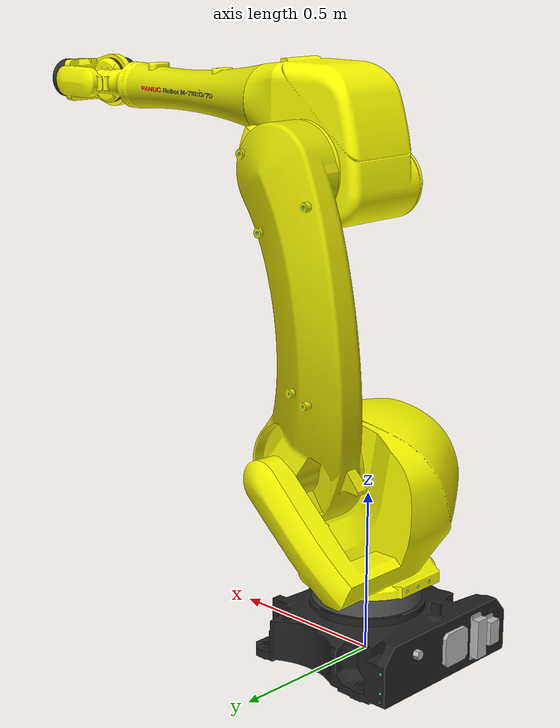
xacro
<?xml version="1.0" ?>
<robot name="m710id_70" xmlns:xacro="http://wiki.ros.org/xacro">
  <xacro:include
    filename="$(find fanuc_m710_description)/urdf/m710id_70_urdf_macro.xacro"
  />

  <link name="world" />
  <link name="ee_link" />
  <xacro:m710id_70 parent="world" child="ee_link">
    <origin xyz="0 0 0" rpy="0 0 0" />
  </xacro:m710id_70>
</robot>

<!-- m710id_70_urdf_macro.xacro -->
<!--
SPDX-FileCopyrightText: 2026, FANUC America Corporation
SPDX-FileCopyrightText: 2026, FANUC CORPORATION
SPDX-License-Identifier: Apache-2.0
-->
<!-- URDF for M-710/70-21D (M-710iD/70) -->
<robot xmlns:xacro="http://wiki.ros.org/xacro">
  <xacro:macro
    name="m710id_70"
    params="prefix=''
            parent
            *origin
            child"
  >

    <xacro:property name="j1_lower_limit" value="${radians(-185)}" />
    <xacro:property name="j2_lower_limit" value="${radians(-75)}" />
    <xacro:property name="j3_lower_limit" value="${radians(-80.5)}" />
    <xacro:property name="j4_lower_limit" value="${radians(-400)}" />
    <xacro:property name="j5_lower_limit" value="${radians(-125)}" />
    <xacro:property name="j6_lower_limit" value="${radians(-400)}" />

    <xacro:property name="j1_upper_limit" value="${radians(185)}" />
    <xacro:property name="j2_upper_limit" value="${radians(150)}" />
    <xacro:property name="j3_upper_limit" value="${radians(205)}" />
    <xacro:property name="j4_upper_limit" value="${radians(400)}" />
    <xacro:property name="j5_upper_limit" value="${radians(125)}" />
    <xacro:property name="j6_upper_limit" value="${radians(400)}" />

    <xacro:property name="j1_effort_limit" value="8000" />
    <xacro:property name="j2_effort_limit" value="10000" />
    <xacro:property name="j3_effort_limit" value="5000" />
    <xacro:property name="j4_effort_limit" value="2000" />
    <xacro:property name="j5_effort_limit" value="1000" />
    <xacro:property name="j6_effort_limit" value="900" />

    <xacro:property name="j1_velocity_limit" value="${radians(180)}" />
    <xacro:property name="j2_velocity_limit" value="${radians(180)}" />
    <xacro:property name="j3_velocity_limit" value="${radians(180)}" />
    <xacro:property name="j4_velocity_limit" value="${radians(260)}" />
    <xacro:property name="j5_velocity_limit" value="${radians(260)}" />
    <xacro:property name="j6_velocity_limit" value="${radians(370)}" />

    <!-- links -->
    <link name="${prefix}base_link">
      <visual>
        <origin xyz="0 0 0" rpy="0 0 0" />
        <geometry>
          <mesh
            filename="package://fanuc_m710_description/meshes/m710id_70/visual/base.dae"
          />
        </geometry>
      </visual>
      <collision>
        <origin xyz="0 0 0" rpy="0 0 0" />
        <geometry>
          <mesh
            filename="package://fanuc_m710_description/meshes/m710id_70/collision/base.stl"
          />
        </geometry>
      </collision>
      <inertial>
        <mass value=" 115" />
        <origin xyz="-.0562 -.000509  .109" />
        <inertia
          ixx=" 2.95"
          ixy="-.0346"
          ixz=" .0263"
          iyy=" 3.15"
          iyz=" .00171"
          izz=" 5.12"
        />
      </inertial>
    </link>

    <link name="${prefix}J1_link">
      <visual>
        <origin xyz="0 0 0" rpy="0 0 0" />
        <geometry>
          <mesh
            filename="package://fanuc_m710_description/meshes/m710id_70/visual/j1.dae"
          />
        </geometry>
      </visual>
      <collision>
        <origin xyz="0 0 0" rpy="0 0 0" />
        <geometry>
          <mesh
            filename="package://fanuc_m710_description/meshes/m710id_70/collision/j1.stl"
          />
        </geometry>
      </collision>
      <inertial>
        <mass value=" 189" />
        <origin xyz=" .0361 -.00394 -.0874" />
        <inertia
          ixx=" 7.22"
          ixy=" .238"
          ixz="-.646"
          iyy=" 5.83"
          iyz=" .444"
          izz=" 7.43"
        />
      </inertial>
    </link>

    <link name="${prefix}J2_link">
      <visual>
        <origin xyz="0 0 0" rpy="0 0 0" />
        <geometry>
          <mesh
            filename="package://fanuc_m710_description/meshes/m710id_70/visual/j2.dae"
          />
        </geometry>
      </visual>
      <collision>
        <origin xyz="0 0 0" rpy="0 0 0" />
        <geometry>
          <mesh
            filename="package://fanuc_m710_description/meshes/m710id_70/collision/j2.stl"
          />
        </geometry>
      </collision>
      <inertial>
        <mass value=" 137" />
        <origin xyz="-.0291  .17  .4" />
        <inertia
          ixx=" 13.3"
          ixy=" .0925"
          ixz="-.0231"
          iyy=" 14.2"
          iyz="-1.14"
          izz=" 1.9"
        />
      </inertial>
    </link>

    <link name="${prefix}J3_link">
      <visual>
        <origin xyz="0 0 0" rpy="0 0 0" />
        <geometry>
          <mesh
            filename="package://fanuc_m710_description/meshes/m710id_70/visual/j3.dae"
          />
        </geometry>
      </visual>
      <collision>
        <origin xyz="0 0 0" rpy="0 0 0" />
        <geometry>
          <mesh
            filename="package://fanuc_m710_description/meshes/m710id_70/collision/j3.stl"
          />
        </geometry>
      </collision>
      <inertial>
        <mass value=" 93.9" />
        <origin xyz=" .0255 -.005  .0679" />
        <inertia
          ixx=" 2"
          ixy="-.0815"
          ixz="-.327"
          iyy=" 2.53"
          iyz="-.0631"
          izz=" 2.02"
        />
      </inertial>
    </link>

    <link name="${prefix}J4_link">
      <visual>
        <origin xyz="0 0 0" rpy="0 0 0" />
        <geometry>
          <mesh
            filename="package://fanuc_m710_description/meshes/m710id_70/visual/j4.dae"
          />
        </geometry>
      </visual>
      <collision>
        <origin xyz="0 0 0" rpy="0 0 0" />
        <geometry>
          <mesh
            filename="package://fanuc_m710_description/meshes/m710id_70/collision/j4.stl"
          />
        </geometry>
      </collision>
      <inertial>
        <mass value=" 34.8" />
        <origin xyz=" .612 -.00489  .000279" />
        <inertia
          ixx=" .14"
          ixy=" .012"
          ixz="-.000192"
          iyy=" 1.83"
          iyz="-.000335"
          izz=" 1.83"
        />
      </inertial>
    </link>

    <link name="${prefix}J5_link">
      <visual>
        <origin xyz="0 0 0" rpy="0 0 0" />
        <geometry>
          <mesh
            filename="package://fanuc_m710_description/meshes/m710id_70/visual/j5.dae"
          />
        </geometry>
      </visual>
      <collision>
        <origin xyz="0 0 0" rpy="0 0 0" />
        <geometry>
          <mesh
            filename="package://fanuc_m710_description/meshes/m710id_70/collision/j5.stl"
          />
        </geometry>
      </collision>
      <inertial>
        <mass value=" 10.2" />
        <origin xyz=" .0344 -.0134  .0000000923" />
        <inertia
          ixx=" .0448"
          ixy="-.00501"
          ixz="-.000000106"
          iyy=" .0525"
          iyz="-.00000028"
          izz=" .0678"
        />
      </inertial>
    </link>

    <link name="${prefix}J6_link">
      <visual>
        <origin xyz="0 0 0" rpy="0 0 0" />
        <geometry>
          <mesh
            filename="package://fanuc_m710_description/meshes/m710id_70/visual/j6.dae"
          />
        </geometry>
      </visual>
      <collision>
        <origin xyz="0 0 0" rpy="0 0 0" />
        <geometry>
          <mesh
            filename="package://fanuc_m710_description/meshes/m710id_70/collision/j6.stl"
          />
        </geometry>
      </collision>
      <inertial>
        <mass value=" .447" />
        <origin xyz=" .165 -7.3E-19  3.24E-19" />
        <inertia
          ixx=" .000872"
          ixy="-1.22E-19"
          ixz="-4.86E-20"
          iyy=" .000451"
          iyz="-1.66E-21"
          izz=" .000451"
        />
      </inertial>
    </link>

    <!-- joints -->
    <joint name="${prefix}J1" type="revolute">
      <origin xyz=" 0  0  .565" rpy="0 0 0" />
      <parent link="${prefix}base_link" />
      <child link="${prefix}J1_link" />
      <axis xyz=" 0  0  1" />
      <limit
        lower="${j1_lower_limit}"
        upper="${j1_upper_limit}"
        effort="${j1_effort_limit}"
        velocity="${j1_velocity_limit}"
      />
    </joint>

    <joint name="${prefix}J2" type="revolute">
      <origin xyz=" .15  0  0" rpy="0 0 0" />
      <parent link="${prefix}J1_link" />
      <child link="${prefix}J2_link" />
      <axis xyz=" 0  1  0" />
      <limit
        lower="${j2_lower_limit}"
        upper="${j2_upper_limit}"
        effort="${j2_effort_limit}"
        velocity="${j2_velocity_limit}"
      />
    </joint>

    <joint name="${prefix}J3" type="revolute">
      <origin xyz=" 0  0  .895" rpy="0 0 0" />
      <parent link="${prefix}J2_link" />
      <child link="${prefix}J3_link" />
      <axis xyz=" 0 -1  0" />
      <limit
        lower="${j3_lower_limit}"
        upper="${j3_upper_limit}"
        effort="${j3_effort_limit}"
        velocity="${j3_velocity_limit}"
      />
    </joint>

    <joint name="${prefix}J4" type="revolute">
      <origin xyz=" 0  0  .17" rpy="0 0 0" />
      <parent link="${prefix}J3_link" />
      <child link="${prefix}J4_link" />
      <axis xyz="-1  0  0" />
      <limit
        lower="${j4_lower_limit}"
        upper="${j4_upper_limit}"
        effort="${j4_effort_limit}"
        velocity="${j4_velocity_limit}"
      />
    </joint>

    <joint name="${prefix}J5" type="revolute">
      <origin xyz=" 1.045  0  0" rpy="0 0 0" />
      <parent link="${prefix}J4_link" />
      <child link="${prefix}J5_link" />
      <axis xyz=" 0 -1  0" />
      <limit
        lower="${j5_lower_limit}"
        upper="${j5_upper_limit}"
        effort="${j5_effort_limit}"
        velocity="${j5_velocity_limit}"
      />
    </joint>

    <joint name="${prefix}J6" type="revolute">
      <origin xyz=" 0  0  0" rpy="0 0 0" />
      <parent link="${prefix}J5_link" />
      <child link="${prefix}J6_link" />
      <axis xyz="-1  0  0" />
      <limit
        lower="${j6_lower_limit}"
        upper="${j6_upper_limit}"
        effort="${j6_effort_limit}"
        velocity="${j6_velocity_limit}"
      />
    </joint>

    <!-- world coords -->
    <link name="${prefix}wbase" />
    <joint name="${prefix}base_link-wbase" type="fixed">
      <origin xyz=" 0  0  .565" rpy="0 0 0" />
      <parent link="${prefix}base_link" />
      <child link="${prefix}wbase" />
    </joint>

    <!-- flange coords -->
    <link name="${prefix}flange" />
    <joint name="${prefix}J6-flange" type="fixed">
      <origin xyz=" .175  0  0" rpy="0 0 0" />
      <parent link="${prefix}J6_link" />
      <child link="${prefix}flange" />
    </joint>

    <!-- FANUC flange coords -->
    <link name="${prefix}fanuc_flange" />
    <joint name="${prefix}flange-fanuc_flange" type="fixed">
      <origin xyz="0 0 0" rpy="${radians( 180)} ${radians(-90)} ${radians( 0)}" />
      <parent link="${prefix}flange" />
      <child link="${prefix}fanuc_flange" />
    </joint>

    <!-- Attach to parent -->
    <joint name="${prefix}base_joint" type="fixed">
      <xacro:insert_block name="origin" />
      <parent link="${parent}" />
      <child link="${prefix}base_link" />
    </joint>

    <!-- Attach child -->
    <joint name="${prefix}child_joint" type="fixed">
      <origin xyz="0 0 0" rpy="0 0 0" />
      <parent link="${prefix}flange" />
      <child link="${child}" />
    </joint>
  </xacro:macro>
</robot>
